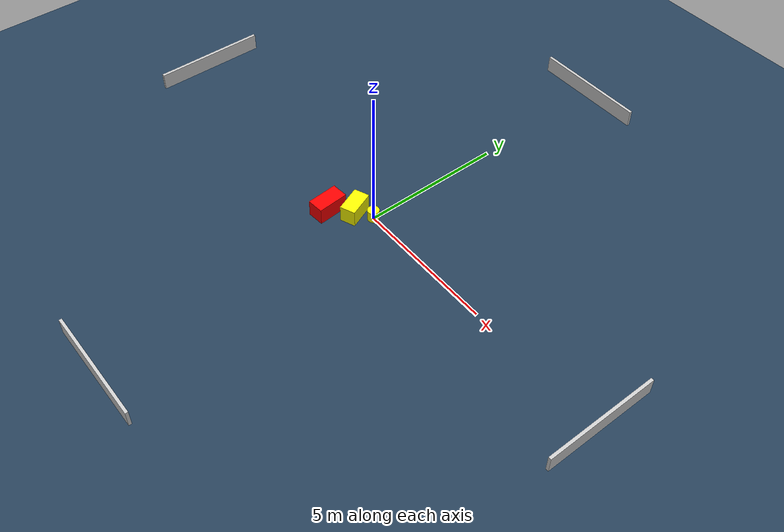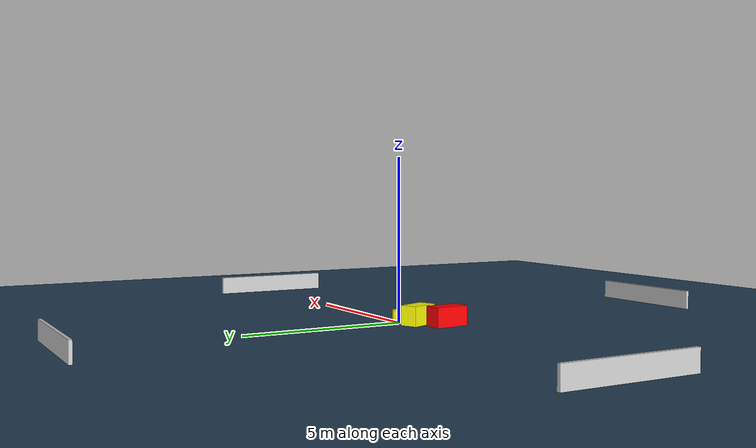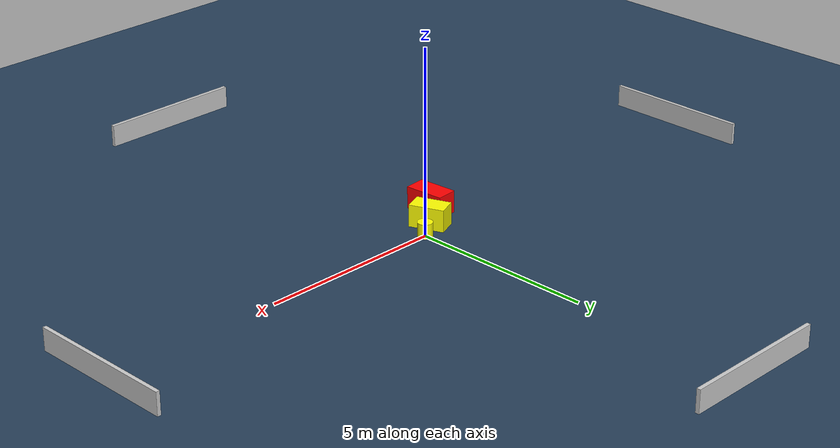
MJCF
<?xml version="1.0" ?>
<mujoco model="generated_environment">
  <option timestep="0.01" integrator="RK4" cone="elliptic"/>
  <default>
    <geom density="1"/>
  </default>
  <asset>
    <texture builtin="gradient" height="3072" name="skybox" rgb1="0.3 0.5 0.7" rgb2="0 0 0" type="skybox" width="512"/>
    <texture builtin="checker" height="300" name="groundplane" rgb1="0.2 0.3 0.4" rgb2="0.1 0.2 0.3" type="2d" width="300"/>
    <material name="groundplane" reflectance="0.2" texrepeat="5 5" texture="groundplane"/>
  </asset>
  <worldbody>
    <light dir="0 0 -1" directional="true" pos="0 0 1.5"/>
    <geom condim="3" friction="0.5 0.005 0.001" material="groundplane" name="floor" pos="0 0 0" size="0 0 0.05" type="plane"/>
    <body name="walls">
      <geom name="wall_1" condim="4" pos="-10.0 0.0 0.3" rgba="0.800000011920929 0.800000011920929 0.800000011920929 1.0" size="0.05 2.0 0.3" type="box"/>
      <geom name="wall_2" condim="4" pos="10.0 0.0 0.3" rgba="0.800000011920929 0.800000011920929 0.800000011920929 1.0" size="0.05 2.0 0.3" type="box"/>
      <geom name="wall_3" condim="4" pos="0.0 -10.0 0.3" rgba="0.800000011920929 0.800000011920929 0.800000011920929 1.0" size="2.0 0.05 0.3" type="box"/>
      <geom name="wall_4" condim="4" pos="0.0 10.0 0.3" rgba="0.800000011920929 0.800000011920929 0.800000011920929 1.0" size="2.0 0.05 0.3" type="box"/>
    </body>
    <body name="robot">
      <joint name="joint_x" type="slide" pos="0 0 0" axis="1 0 0"/>
      <joint name="joint_y" type="slide" pos="0 0 0" axis="0 1 0"/>
      <geom name="robot" type="cylinder" pos="0.0 0.0 0.2" size="0.2 0.2 0.0" mass="5.0" friction="1.0 0.005 0.0001" condim="4" rgba="1.0 1.0 0.0 1.0"/>
    </body>
    <body name="obstacle_1_movable">
      <geom name="obstacle_1_movable" condim="4" pos="-0.5344485995839231 -0.3510576693384747 0.3" euler="0 0 202.19613754662794" friction="0.0 0.005 0.001" rgba="1.0 1.0 0.0 1.0" size="0.26991963218676285 0.46849173797674887 0.3" type="box" mass="0.1"/>
      <joint type="free"/>
    </body>
    <body name="obstacle_2_static">
      <geom name="obstacle_2_static" condim="4" pos="-1.183733995946228 -0.9635454545174852 0.3" euler="0 0 4.735092809416637" friction="0.0 0.005 0.001" rgba="1.0 0.0 0.0 1.0" size="0.2879593812644289 0.5386769781069642 0.3" type="box"/>
    </body>
  </worldbody>
  <actuator>
    <motor name="actuator_x" joint="joint_x" gear="1" ctrlrange="-1 1"/>
    <motor name="actuator_y" joint="joint_y" gear="1" ctrlrange="-1 1"/>
  </actuator>
</mujoco>
